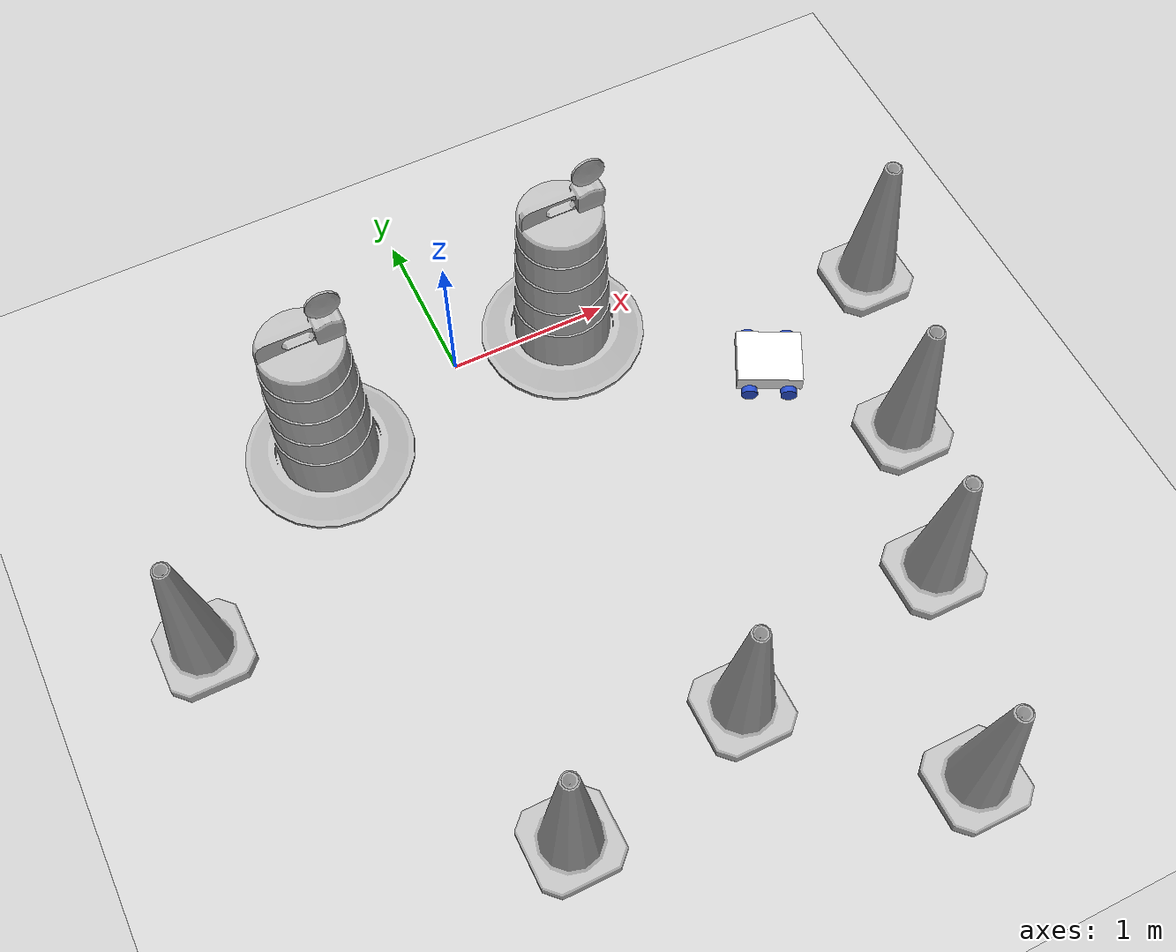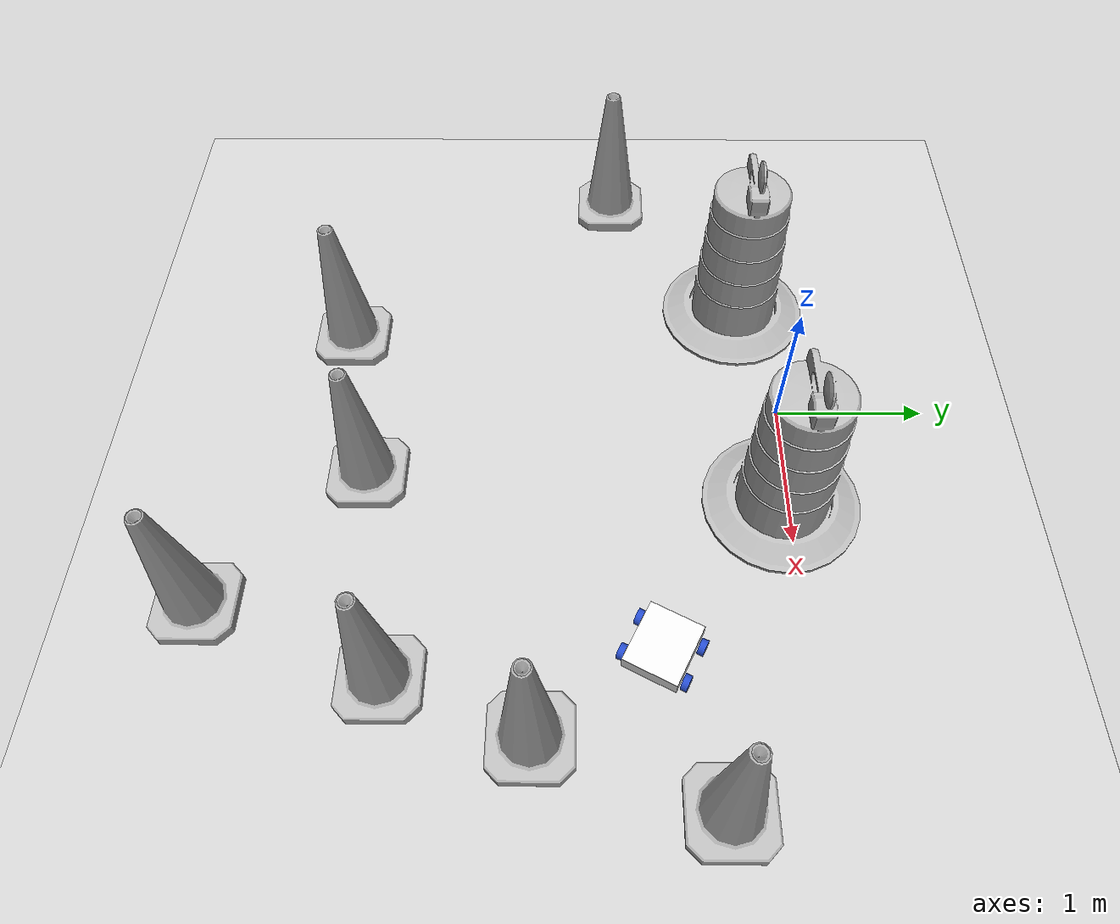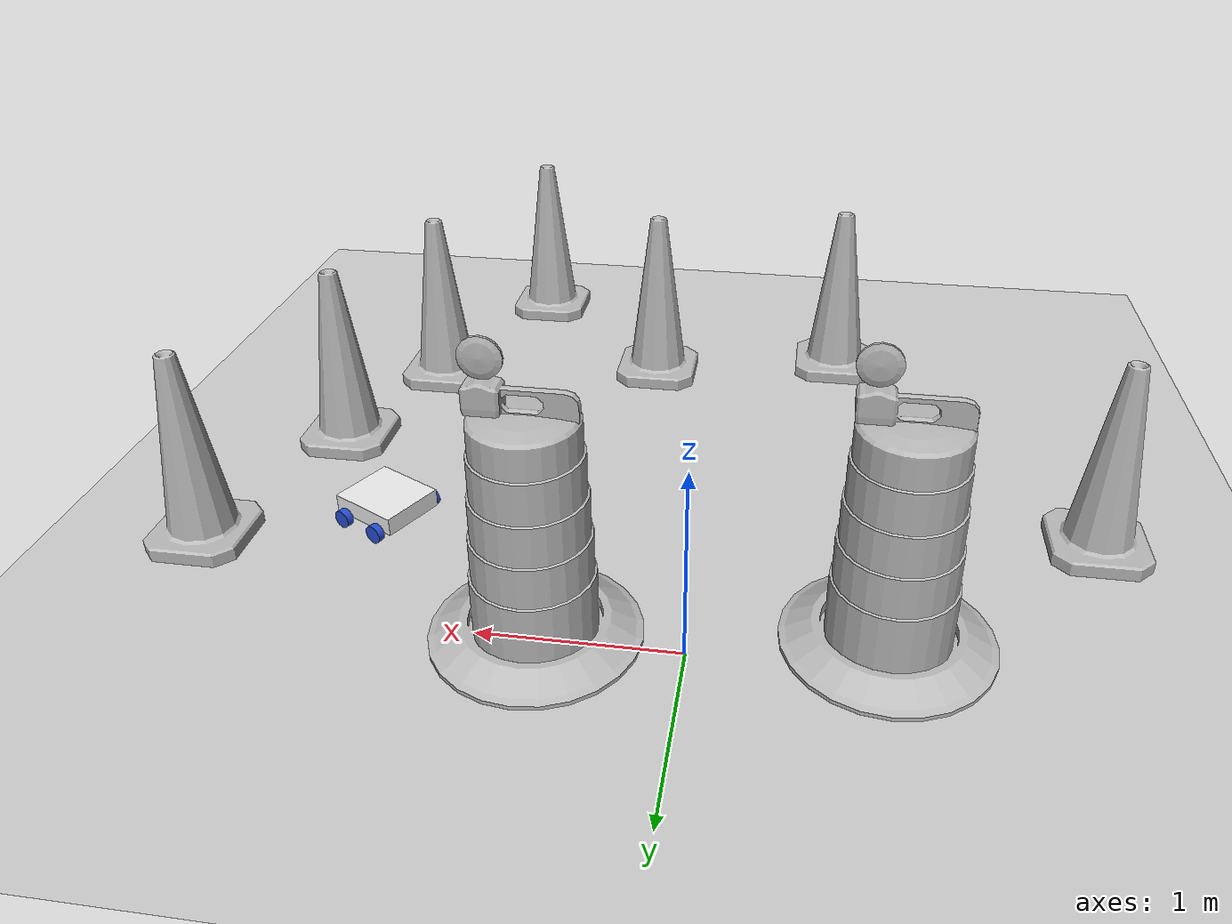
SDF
<sdf version="1.7">
 <world name="default">
  <light name="sun" type="directional">
   <pose>0 0 10 0 -0 0</pose>
   <diffuse>0.8 0.8 0.8 1</diffuse>
   <specular>0.2 0.2 0.2 1</specular>
   <attenuation>
    <range>1000</range>
    <constant>0.9</constant>
    <linear>0.01</linear>
    <quadratic>0.001</quadratic>
   </attenuation>
   <direction>-0.5 0.1 -0.9</direction>
   <spot><inner_angle>0</inner_angle><outer_angle>0</outer_angle><falloff>0</falloff></spot>
  </light>
  <model name="ground_plane">
   <static>1</static>
   <link name="link">
    <collision name="collision">
     <geometry><plane><normal>0 0 1</normal><size>100 100</size></plane></geometry>
     <surface><friction><ode><mu>100</mu><mu2>50</mu2></ode></friction></surface>
    </collision>
    <visual name="visual">
     <cast_shadows>0</cast_shadows>
     <geometry><plane><normal>0 0 1</normal><size>100 100</size></plane></geometry>
     <material>
      <script><uri>file://media/materials/scripts/gazebo.material</uri><name>Gazebo/Grey</name></script>
     </material>
    </visual>
   </link>
  </model>
  <gravity>0 0 -9.8</gravity>
  <magnetic_field>6e-06 2.3e-05 -4.2e-05</magnetic_field>
  <atmosphere type="adiabatic"/>
  <physics type="ode">
   <max_step_size>0.001</max_step_size>
   <real_time_factor>1</real_time_factor>
   <real_time_update_rate>1000</real_time_update_rate>
  </physics>
  <scene><ambient>0.4 0.4 0.4 1</ambient><background>0.7 0.7 0.7 1</background><shadows>1</shadows></scene>
  <spherical_coordinates>
   <surface_model>EARTH_WGS84</surface_model>
   <latitude_deg>0</latitude_deg>
   <longitude_deg>0</longitude_deg>
   <elevation>0</elevation>
   <heading_deg>0</heading_deg>
  </spherical_coordinates>
  <model name="my_bot">
   <link name="base_link">
    <inertial>
     <pose>0.26 -0 0.025 0 -0 0</pose>
     <mass>2</mass>
     <inertia>
      <ixx>0.0547313</ixx>
      <ixy>-3.60822e-18</ixy>
      <ixz>-0.002</ixz>
      <iyy>0.0198667</iyy>
      <iyz>-4.16584e-19</iyz>
      <izz>0.0691813</izz>
     </inertia>
    </inertial>
    <collision name="base_link_fixed_joint_lump__chassis_collision">
     <pose>0.1 0 1 0 -0 0</pose>
     <geometry><box><size>0.4 0.35 0.1</size></box></geometry>
    </collision>
    <collision name="base_link_fixed_joint_lump__leftf_wheel_collision_1">
     <pose>0.22 0.20416 0 -1.5708 0 0</pose>
     <geometry><cylinder><length>0.04</length><radius>0.05</radius></cylinder></geometry>
     <surface><friction><ode><mu>0.001</mu><mu2>0.001</mu2></ode></friction></surface>
    </collision>
    <collision name="base_link_fixed_joint_lump__rightf_wheel_collision_2">
     <pose>0.22 -0.20416 0 1.5708 -0 0</pose>
     <geometry><cylinder><length>0.04</length><radius>0.05</radius></cylinder></geometry>
     <surface><friction><ode><mu>0.001</mu><mu2>0.001</mu2></ode></friction></surface>
    </collision>
    <visual name="base_link_fixed_joint_lump__chassis_visual">
     <pose>0.1 0 0.05 0 -0 0</pose>
     <geometry><box><size>0.4 0.35 0.1</size></box></geometry>
     <material>
      <script><name>Gazebo/White</name><uri>file://media/materials/scripts/gazebo.material</uri></script>
     </material>
    </visual>
    <visual name="base_link_fixed_joint_lump__leftf_wheel_visual_1">
     <pose>0.22 0.20416 0 -1.5708 0 0</pose>
     <geometry><cylinder><length>0.04</length><radius>0.05</radius></cylinder></geometry>
     <material>
      <script><name>Gazebo/Blue</name><uri>file://media/materials/scripts/gazebo.material</uri></script>
     </material>
    </visual>
    <visual name="base_link_fixed_joint_lump__rightf_wheel_visual_2">
     <pose>0.22 -0.20416 0 1.5708 -0 0</pose>
     <geometry><cylinder><length>0.04</length><radius>0.05</radius></cylinder></geometry>
     <material>
      <script><name>Gazebo/Blue</name><uri>file://media/materials/scripts/gazebo.material</uri></script>
     </material>
    </visual>
   </link>
   <joint name="left_wheel_joint" type="revolute">
    <pose relative_to="base_link">-0.02 0.20416 0 -1.5708 0 0</pose>
    <parent>base_link</parent>
    <child>left_wheel</child>
    <axis>
     <xyz>0 0 1</xyz>
     <limit><lower>-1e+16</lower><upper>1e+16</upper></limit>
     <dynamics><spring_reference>0</spring_reference><spring_stiffness>0</spring_stiffness></dynamics>
    </axis>
   </joint>
   <link name="left_wheel">
    <pose relative_to="left_wheel_joint">0 0 0 0 -0 0</pose>
    <inertial>
     <mass>0.5</mass>
     <inertia>
      <ixx>0.000379167</ixx>
      <ixy>0</ixy>
      <ixz>0</ixz>
      <iyy>0.000379167</iyy>
      <iyz>0</iyz>
      <izz>0.000625</izz>
     </inertia>
    </inertial>
    <collision name="left_wheel_collision">
     <geometry><cylinder><length>0.04</length><radius>0.05</radius></cylinder></geometry>
    </collision>
    <visual name="left_wheel_visual">
     <geometry><cylinder><length>0.04</length><radius>0.05</radius></cylinder></geometry>
     <material>
      <script><name>Gazebo/Blue</name><uri>file://media/materials/scripts/gazebo.material</uri></script>
     </material>
    </visual>
   </link>
   <joint name="right_wheel_joint" type="revolute">
    <pose relative_to="base_link">-0.02 -0.20416 0 1.5708 -0 0</pose>
    <parent>base_link</parent>
    <child>right_wheel</child>
    <axis>
     <xyz>0 0 -1</xyz>
     <limit><lower>-1e+16</lower><upper>1e+16</upper></limit>
     <dynamics><spring_reference>0</spring_reference><spring_stiffness>0</spring_stiffness></dynamics>
    </axis>
   </joint>
   <link name="right_wheel">
    <pose relative_to="right_wheel_joint">0 0 0 0 -0 0</pose>
    <inertial>
     <mass>0.5</mass>
     <inertia>
      <ixx>0.000379167</ixx>
      <ixy>0</ixy>
      <ixz>0</ixz>
      <iyy>0.000379167</iyy>
      <iyz>0</iyz>
      <izz>0.000625</izz>
     </inertia>
    </inertial>
    <collision name="right_wheel_collision">
     <geometry><cylinder><length>0.04</length><radius>0.05</radius></cylinder></geometry>
    </collision>
    <visual name="right_wheel_visual">
     <geometry><cylinder><length>0.04</length><radius>0.05</radius></cylinder></geometry>
     <material>
      <script><name>Gazebo/Blue</name><uri>file://media/materials/scripts/gazebo.material</uri></script>
     </material>
    </visual>
   </link>
   <plugin name="diff_drive" filename="libgazebo_ros_diff_drive.so">
    <left_joint>left_wheel_joint</left_joint>
    <right_joint>right_wheel_joint</right_joint>
    <leftf_joint>leftf_wheel_joint</leftf_joint>
    <rightf_joint>rightf_wheel_joint</rightf_joint>
    <wheel_separation>0.4</wheel_separation>
    <wheel_diameter>0.1</wheel_diameter>
    <max_wheel_torque>200</max_wheel_torque>
    <max_wheel_acceleration>10.0</max_wheel_acceleration>
    <odometry_frame>odom</odometry_frame>
    <robot_base_frame>base_link</robot_base_frame>
    <publish_odom>1</publish_odom>
    <publish_odom_tf>1</publish_odom_tf>
    <publish_wheel_tf>1</publish_wheel_tf>
   </plugin>
   <frame name="chassis_joint" attached_to="base_link"><pose>-0.1 0 0 0 -0 0</pose></frame>
   <frame name="chassis" attached_to="chassis_joint"/>
   <frame name="leftf_wheel_joint" attached_to="base_link"><pose>0.22 0.20416 0 -1.5708 0 0</pose></frame>
   <frame name="leftf_wheel" attached_to="leftf_wheel_joint"/>
   <frame name="rightf_wheel_joint" attached_to="base_link"><pose>0.22 -0.20416 0 1.5708 -0 0</pose></frame>
   <frame name="rightf_wheel" attached_to="rightf_wheel_joint"/>
   <pose>1.64184 -0.814783 0.049999 0 -4e-06 -0.471599</pose>
  </model>
  <model name="Construction Cone">
   <link name="link">
    <collision name="collision">
     <geometry>
      <mesh><scale>10 10 10</scale><uri>model://construction_cone/meshes/construction_cone.dae</uri></mesh>
     </geometry>
    </collision>
    <visual name="visual">
     <geometry>
      <mesh><scale>10 10 10</scale><uri>model://construction_cone/meshes/construction_cone.dae</uri></mesh>
     </geometry>
    </visual>
    <inertial>
     <inertia><ixx>1</ixx><ixy>0</ixy><ixz>0</ixz><iyy>1</iyy><iyz>0</iyz><izz>1</izz></inertia>
     <mass>1</mass>
    </inertial>
   </link>
   <pose>2.62861 -0.534811 -8e-06 3e-06 -0 0</pose>
  </model>
  <model name="Construction Barrel">
   <link name="link">
    <inertial>
     <pose>0 0 0.4 0 -0 0</pose>
     <mass>500</mass>
     <inertia><ixx>51.2096</ixx><iyy>51.2096</iyy><izz>25</izz><ixy>0</ixy><ixz>0</ixz><iyz>0</iyz></inertia>
    </inertial>
    <collision name="collision">
     <geometry><mesh><uri>model://construction_barrel/meshes/construction_barrel.dae</uri></mesh></geometry>
    </collision>
    <visual name="visual">
     <geometry><mesh><uri>model://construction_barrel/meshes/construction_barrel.dae</uri></mesh></geometry>
    </visual>
   </link>
   <pose>0.712232 -0.048685 0 0 0 -1.5e-05</pose>
  </model>
  <model name="Construction Barrel_0">
   <link name="link">
    <inertial>
     <pose>0 0 0.4 0 -0 0</pose>
     <mass>500</mass>
     <inertia><ixx>51.2096</ixx><iyy>51.2096</iyy><izz>25</izz><ixy>0</ixy><ixz>0</ixz><iyz>0</iyz></inertia>
    </inertial>
    <collision name="collision">
     <geometry><mesh><uri>model://construction_barrel/meshes/construction_barrel.dae</uri></mesh></geometry>
    </collision>
    <visual name="visual">
     <geometry><mesh><uri>model://construction_barrel/meshes/construction_barrel.dae</uri></mesh></geometry>
    </visual>
   </link>
   <pose>-0.9239 -0.227381 -0 1e-06 -1e-06 -1.2e-05</pose>
  </model>
  <model name="Construction Cone_0">
   <link name="link">
    <collision name="collision">
     <geometry>
      <mesh><scale>10 10 10</scale><uri>model://construction_cone/meshes/construction_cone.dae</uri></mesh>
     </geometry>
    </collision>
    <visual name="visual">
     <geometry>
      <mesh><scale>10 10 10</scale><uri>model://construction_cone/meshes/construction_cone.dae</uri></mesh>
     </geometry>
    </visual>
    <inertial>
     <inertia><ixx>1</ixx><ixy>0</ixy><ixz>0</ixz><iyy>1</iyy><iyz>0</iyz><izz>1</izz></inertia>
     <mass>1</mass>
    </inertial>
   </link>
   <pose>1.90612 -2.49312 -0 0 -0 0</pose>
  </model>
  <model name="Construction Cone_1">
   <link name="link">
    <collision name="collision">
     <geometry>
      <mesh><scale>10 10 10</scale><uri>model://construction_cone/meshes/construction_cone.dae</uri></mesh>
     </geometry>
    </collision>
    <visual name="visual">
     <geometry>
      <mesh><scale>10 10 10</scale><uri>model://construction_cone/meshes/construction_cone.dae</uri></mesh>
     </geometry>
    </visual>
    <inertial>
     <inertia><ixx>1</ixx><ixy>0</ixy><ixz>0</ixz><iyy>1</iyy><iyz>0</iyz><izz>1</izz></inertia>
     <mass>1</mass>
    </inertial>
   </link>
   <pose>0.512717 -2.74089 -0 0 -0 0</pose>
  </model>
  <model name="Construction Cone_2">
   <link name="link">
    <collision name="collision">
     <geometry>
      <mesh><scale>10 10 10</scale><uri>model://construction_cone/meshes/construction_cone.dae</uri></mesh>
     </geometry>
    </collision>
    <visual name="visual">
     <geometry>
      <mesh><scale>10 10 10</scale><uri>model://construction_cone/meshes/construction_cone.dae</uri></mesh>
     </geometry>
    </visual>
    <inertial>
     <inertia><ixx>1</ixx><ixy>0</ixy><ixz>0</ixz><iyy>1</iyy><iyz>0</iyz><izz>1</izz></inertia>
     <mass>1</mass>
    </inertial>
   </link>
   <pose>2.23961 -1.61469 -1e-05 -0 -0 -0</pose>
  </model>
  <model name="Construction Cone_3">
   <link name="link">
    <collision name="collision">
     <geometry>
      <mesh><scale>10 10 10</scale><uri>model://construction_cone/meshes/construction_cone.dae</uri></mesh>
     </geometry>
    </collision>
    <visual name="visual">
     <geometry>
      <mesh><scale>10 10 10</scale><uri>model://construction_cone/meshes/construction_cone.dae</uri></mesh>
     </geometry>
    </visual>
    <inertial>
     <inertia><ixx>1</ixx><ixy>0</ixy><ixz>0</ixz><iyy>1</iyy><iyz>0</iyz><izz>1</izz></inertia>
     <mass>1</mass>
    </inertial>
   </link>
   <pose>1.44283 -3.6556 -0 0 -0 0</pose>
  </model>
  <model name="Construction Cone_4">
   <link name="link">
    <collision name="collision">
     <geometry>
      <mesh><scale>10 10 10</scale><uri>model://construction_cone/meshes/construction_cone.dae</uri></mesh>
     </geometry>
    </collision>
    <visual name="visual">
     <geometry>
      <mesh><scale>10 10 10</scale><uri>model://construction_cone/meshes/construction_cone.dae</uri></mesh>
     </geometry>
    </visual>
    <inertial>
     <inertia><ixx>1</ixx><ixy>0</ixy><ixz>0</ixz><iyy>1</iyy><iyz>0</iyz><izz>1</izz></inertia>
     <mass>1</mass>
    </inertial>
   </link>
   <pose>-2.02883 -1.11608 -0 0 -0 0</pose>
  </model>
  <model name="Construction Cone_5">
   <link name="link">
    <collision name="collision">
     <geometry>
      <mesh><scale>10 10 10</scale><uri>model://construction_cone/meshes/construction_cone.dae</uri></mesh>
     </geometry>
    </collision>
    <visual name="visual">
     <geometry>
      <mesh><scale>10 10 10</scale><uri>model://construction_cone/meshes/construction_cone.dae</uri></mesh>
     </geometry>
    </visual>
    <inertial>
     <inertia><ixx>1</ixx><ixy>0</ixy><ixz>0</ixz><iyy>1</iyy><iyz>0</iyz><izz>1</izz></inertia>
     <mass>1</mass>
    </inertial>
   </link>
   <pose>-0.656755 -2.99477 -0 0 -1e-06 0</pose>
  </model>
 </world>
</sdf>
